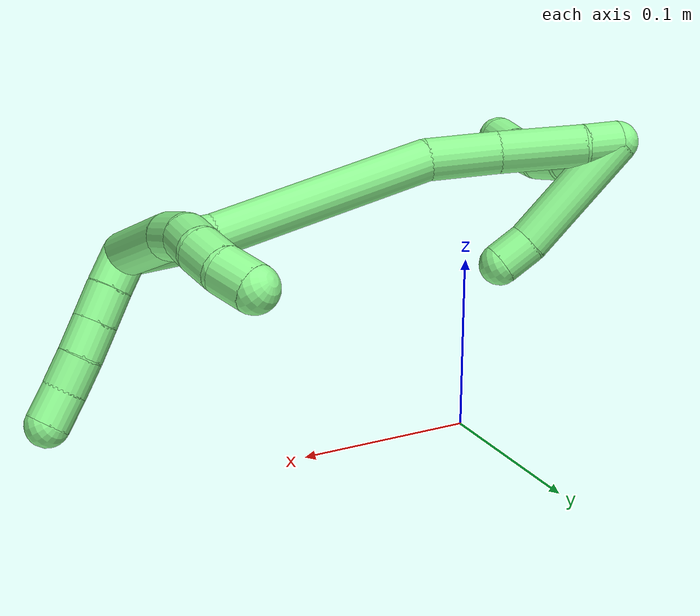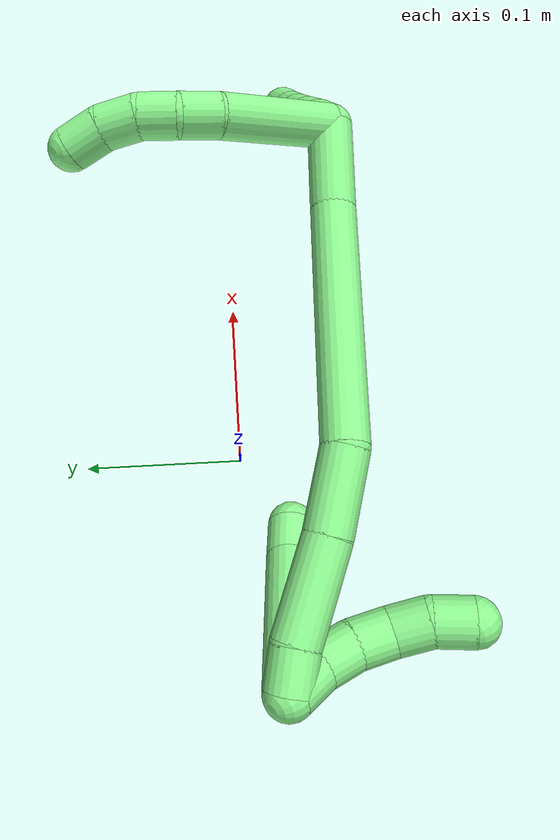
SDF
<sdf version="1.7">
 <world name="default">
  <model name="13">
   <static>0</static>
   <link name="13">
    <collision name="collision-cylinder-e_1_2_8">
     <pose>0.014918 0.001102 0.029873 -0.036865 0.462868 -0.008688</pose>
     <geometry><cylinder><radius>0.0125</radius><length>0.066818</length></cylinder></geometry>
     <surface>
      <friction><ode><mu>1.16</mu><mu2>1.16</mu2><slip1>0</slip1><slip2>0</slip2></ode></friction>
      <contact><ode><kp>1e+06</kp><kd>1</kd><max_vel>0</max_vel><min_depth>0.001</min_depth></ode></contact>
     </surface>
    </collision>
    <visual name="visual-cylinder-e_1_2_8">
     <pose>0.014918 0.001102 0.029873 -0.036865 0.462868 -0.008688</pose>
     <geometry><cylinder><radius>0.0125</radius><length>0.066818</length></cylinder></geometry>
     <material><ambient>0.564706 0.984314 0.572549 1</ambient></material>
    </visual>
    <collision name="collision-cylinder-e_2_8_9">
     <pose>0.035096 0.004328 0.069053 -0.224415 0.503693 -0.057972</pose>
     <geometry><cylinder><radius>0.0125</radius><length>0.0218</length></cylinder></geometry>
     <surface>
      <friction><ode><mu>1.16</mu><mu2>1.16</mu2><slip1>0</slip1><slip2>0</slip2></ode></friction>
      <contact><ode><kp>1e+06</kp><kd>1</kd><max_vel>0</max_vel><min_depth>0.001</min_depth></ode></contact>
     </surface>
    </collision>
    <visual name="visual-cylinder-e_2_8_9">
     <pose>0.035096 0.004328 0.069053 -0.224415 0.503693 -0.057972</pose>
     <geometry><cylinder><radius>0.0125</radius><length>0.0218</length></cylinder></geometry>
     <material><ambient>0.564706 0.984314 0.572549 1</ambient></material>
    </visual>
    <collision name="collision-cylinder-e_3_9_10">
     <pose>0.046698 0.010531 0.085408 -0.524629 0.661591 -0.183894</pose>
     <geometry><cylinder><radius>0.0125</radius><length>0.02064</length></cylinder></geometry>
     <surface>
      <friction><ode><mu>1.16</mu><mu2>1.16</mu2><slip1>0</slip1><slip2>0</slip2></ode></friction>
      <contact><ode><kp>1e+06</kp><kd>1</kd><max_vel>0</max_vel><min_depth>0.001</min_depth></ode></contact>
     </surface>
    </collision>
    <visual name="visual-cylinder-e_3_9_10">
     <pose>0.046698 0.010531 0.085408 -0.524629 0.661591 -0.183894</pose>
     <geometry><cylinder><radius>0.0125</radius><length>0.02064</length></cylinder></geometry>
     <material><ambient>0.564706 0.984314 0.572549 1</ambient></material>
    </visual>
    <collision name="collision-cylinder-e_4_10_11">
     <pose>0.057551 0.020782 0.099352 -0.730074 0.453646 -0.175948</pose>
     <geometry><cylinder><radius>0.0125</radius><length>0.020594</length></cylinder></geometry>
     <surface>
      <friction><ode><mu>1.16</mu><mu2>1.16</mu2><slip1>0</slip1><slip2>0</slip2></ode></friction>
      <contact><ode><kp>1e+06</kp><kd>1</kd><max_vel>0</max_vel><min_depth>0.001</min_depth></ode></contact>
     </surface>
    </collision>
    <visual name="visual-cylinder-e_4_10_11">
     <pose>0.057551 0.020782 0.099352 -0.730074 0.453646 -0.175948</pose>
     <geometry><cylinder><radius>0.0125</radius><length>0.020594</length></cylinder></geometry>
     <material><ambient>0.564706 0.984314 0.572549 1</ambient></material>
    </visual>
    <collision name="collision-cylinder-e_5_11_6">
     <pose>0.064013 0.03407 0.113108 -0.803678 0.194741 -0.082973</pose>
     <geometry><cylinder><radius>0.0125</radius><length>0.020148</length></cylinder></geometry>
     <surface>
      <friction><ode><mu>1.16</mu><mu2>1.16</mu2><slip1>0</slip1><slip2>0</slip2></ode></friction>
      <contact><ode><kp>1e+06</kp><kd>1</kd><max_vel>0</max_vel><min_depth>0.001</min_depth></ode></contact>
     </surface>
    </collision>
    <visual name="visual-cylinder-e_5_11_6">
     <pose>0.064013 0.03407 0.113108 -0.803678 0.194741 -0.082973</pose>
     <geometry><cylinder><radius>0.0125</radius><length>0.020148</length></cylinder></geometry>
     <material><ambient>0.564706 0.984314 0.572549 1</ambient></material>
    </visual>
    <collision name="collision-cylinder-e_1_2_12">
     <pose>0.006489 0.00566 -0.005084 -2.30263 0.706169 -1.38124</pose>
     <geometry><cylinder><radius>0.0125</radius><length>0.02</length></cylinder></geometry>
     <surface>
      <friction><ode><mu>1.16</mu><mu2>1.16</mu2><slip1>0</slip1><slip2>0</slip2></ode></friction>
      <contact><ode><kp>1e+06</kp><kd>1</kd><max_vel>0</max_vel><min_depth>0.001</min_depth></ode></contact>
     </surface>
    </collision>
    <visual name="visual-cylinder-e_1_2_12">
     <pose>0.006489 0.00566 -0.005084 -2.30263 0.706169 -1.38124</pose>
     <geometry><cylinder><radius>0.0125</radius><length>0.02</length></cylinder></geometry>
     <material><ambient>0.564706 0.984314 0.572549 1</ambient></material>
    </visual>
    <collision name="collision-cylinder-e_2_12_13">
     <pose>0.019179 0.017298 -0.01525 -2.2753 0.668869 -1.28884</pose>
     <geometry><cylinder><radius>0.0125</radius><length>0.02</length></cylinder></geometry>
     <surface>
      <friction><ode><mu>1.16</mu><mu2>1.16</mu2><slip1>0</slip1><slip2>0</slip2></ode></friction>
      <contact><ode><kp>1e+06</kp><kd>1</kd><max_vel>0</max_vel><min_depth>0.001</min_depth></ode></contact>
     </surface>
    </collision>
    <visual name="visual-cylinder-e_2_12_13">
     <pose>0.019179 0.017298 -0.01525 -2.2753 0.668869 -1.28884</pose>
     <geometry><cylinder><radius>0.0125</radius><length>0.02</length></cylinder></geometry>
     <material><ambient>0.564706 0.984314 0.572549 1</ambient></material>
    </visual>
    <collision name="collision-cylinder-e_3_13_14">
     <pose>0.031581 0.029211 -0.025462 -2.28363 0.668767 -1.29923</pose>
     <geometry><cylinder><radius>0.0125</radius><length>0.02</length></cylinder></geometry>
     <surface>
      <friction><ode><mu>1.16</mu><mu2>1.16</mu2><slip1>0</slip1><slip2>0</slip2></ode></friction>
      <contact><ode><kp>1e+06</kp><kd>1</kd><max_vel>0</max_vel><min_depth>0.001</min_depth></ode></contact>
     </surface>
    </collision>
    <visual name="visual-cylinder-e_3_13_14">
     <pose>0.031581 0.029211 -0.025462 -2.28363 0.668767 -1.29923</pose>
     <geometry><cylinder><radius>0.0125</radius><length>0.02</length></cylinder></geometry>
     <material><ambient>0.564706 0.984314 0.572549 1</ambient></material>
    </visual>
    <collision name="collision-cylinder-e_4_14_15">
     <pose>0.043613 0.040858 -0.036369 -2.36188 0.622679 -1.32882</pose>
     <geometry><cylinder><radius>0.0125</radius><length>0.02</length></cylinder></geometry>
     <surface>
      <friction><ode><mu>1.16</mu><mu2>1.16</mu2><slip1>0</slip1><slip2>0</slip2></ode></friction>
      <contact><ode><kp>1e+06</kp><kd>1</kd><max_vel>0</max_vel><min_depth>0.001</min_depth></ode></contact>
     </surface>
    </collision>
    <visual name="visual-cylinder-e_4_14_15">
     <pose>0.043613 0.040858 -0.036369 -2.36188 0.622679 -1.32882</pose>
     <geometry><cylinder><radius>0.0125</radius><length>0.02</length></cylinder></geometry>
     <material><ambient>0.564706 0.984314 0.572549 1</ambient></material>
    </visual>
    <collision name="collision-cylinder-e_5_15_5">
     <pose>0.055909 0.052045 -0.04746 -2.34118 0.702823 -1.42818</pose>
     <geometry><cylinder><radius>0.0125</radius><length>0.02</length></cylinder></geometry>
     <surface>
      <friction><ode><mu>1.16</mu><mu2>1.16</mu2><slip1>0</slip1><slip2>0</slip2></ode></friction>
      <contact><ode><kp>1e+06</kp><kd>1</kd><max_vel>0</max_vel><min_depth>0.001</min_depth></ode></contact>
     </surface>
    </collision>
    <visual name="visual-cylinder-e_5_15_5">
     <pose>0.055909 0.052045 -0.04746 -2.34118 0.702823 -1.42818</pose>
     <geometry><cylinder><radius>0.0125</radius><length>0.02</length></cylinder></geometry>
     <material><ambient>0.564706 0.984314 0.572549 1</ambient></material>
    </visual>
    <collision name="collision-cylinder-e_1_2_16">
     <pose>-0.020269 0.007939 0.013245 -0.539964 -0.919775 0.272445</pose>
     <geometry><cylinder><radius>0.0125</radius><length>0.050962</length></cylinder></geometry>
     <surface>
      <friction><ode><mu>1.16</mu><mu2>1.16</mu2><slip1>0</slip1><slip2>0</slip2></ode></friction>
      <contact><ode><kp>1e+06</kp><kd>1</kd><max_vel>0</max_vel><min_depth>0.001</min_depth></ode></contact>
     </surface>
    </collision>
    <visual name="visual-cylinder-e_1_2_16">
     <pose>-0.020269 0.007939 0.013245 -0.539964 -0.919775 0.272445</pose>
     <geometry><cylinder><radius>0.0125</radius><length>0.050962</length></cylinder></geometry>
     <material><ambient>0.564706 0.984314 0.572549 1</ambient></material>
    </visual>
    <collision name="collision-cylinder-e_2_16_17">
     <pose>-0.093087 0.028082 0.0661 -0.298883 -0.902951 0.145751</pose>
     <geometry><cylinder><radius>0.0125</radius><length>0.133855</length></cylinder></geometry>
     <surface>
      <friction><ode><mu>1.16</mu><mu2>1.16</mu2><slip1>0</slip1><slip2>0</slip2></ode></friction>
      <contact><ode><kp>1e+06</kp><kd>1</kd><max_vel>0</max_vel><min_depth>0.001</min_depth></ode></contact>
     </surface>
    </collision>
    <visual name="visual-cylinder-e_2_16_17">
     <pose>-0.093087 0.028082 0.0661 -0.298883 -0.902951 0.145751</pose>
     <geometry><cylinder><radius>0.0125</radius><length>0.133855</length></cylinder></geometry>
     <material><ambient>0.564706 0.984314 0.572549 1</ambient></material>
    </visual>
    <collision name="collision-cylinder-e_3_17_18">
     <pose>-0.159318 0.048999 0.119948 -0.549153 -0.686617 0.200712</pose>
     <geometry><cylinder><radius>0.0125</radius><length>0.043166</length></cylinder></geometry>
     <surface>
      <friction><ode><mu>1.16</mu><mu2>1.16</mu2><slip1>0</slip1><slip2>0</slip2></ode></friction>
      <contact><ode><kp>1e+06</kp><kd>1</kd><max_vel>0</max_vel><min_depth>0.001</min_depth></ode></contact>
     </surface>
    </collision>
    <visual name="visual-cylinder-e_3_17_18">
     <pose>-0.159318 0.048999 0.119948 -0.549153 -0.686617 0.200712</pose>
     <geometry><cylinder><radius>0.0125</radius><length>0.043166</length></cylinder></geometry>
     <material><ambient>0.564706 0.984314 0.572549 1</ambient></material>
    </visual>
    <collision name="collision-cylinder-e_4_18_19">
     <pose>-0.187226 0.06857 0.152391 -0.53781 -0.591052 0.167403</pose>
     <geometry><cylinder><radius>0.0125</radius><length>0.051057</length></cylinder></geometry>
     <surface>
      <friction><ode><mu>1.16</mu><mu2>1.16</mu2><slip1>0</slip1><slip2>0</slip2></ode></friction>
      <contact><ode><kp>1e+06</kp><kd>1</kd><max_vel>0</max_vel><min_depth>0.001</min_depth></ode></contact>
     </surface>
    </collision>
    <visual name="visual-cylinder-e_4_18_19">
     <pose>-0.187226 0.06857 0.152391 -0.53781 -0.591052 0.167403</pose>
     <geometry><cylinder><radius>0.0125</radius><length>0.051057</length></cylinder></geometry>
     <material><ambient>0.564706 0.984314 0.572549 1</ambient></material>
    </visual>
    <collision name="collision-cylinder-e_5_19_1">
     <pose>-0.208624 0.083607 0.176993 -0.578556 -0.753923 0.234576</pose>
     <geometry><cylinder><radius>0.0125</radius><length>0.020959</length></cylinder></geometry>
     <surface>
      <friction><ode><mu>1.16</mu><mu2>1.16</mu2><slip1>0</slip1><slip2>0</slip2></ode></friction>
      <contact><ode><kp>1e+06</kp><kd>1</kd><max_vel>0</max_vel><min_depth>0.001</min_depth></ode></contact>
     </surface>
    </collision>
    <visual name="visual-cylinder-e_5_19_1">
     <pose>-0.208624 0.083607 0.176993 -0.578556 -0.753923 0.234576</pose>
     <geometry><cylinder><radius>0.0125</radius><length>0.020959</length></cylinder></geometry>
     <material><ambient>0.564706 0.984314 0.572549 1</ambient></material>
    </visual>
    <collision name="collision-cylinder-e_1_1_20">
     <pose>-0.215745 0.087768 0.17339 3.13995 0.005254 2.53672</pose>
     <geometry><cylinder><radius>0.0125</radius><length>0.02</length></cylinder></geometry>
     <surface>
      <friction><ode><mu>1.16</mu><mu2>1.16</mu2><slip1>0</slip1><slip2>0</slip2></ode></friction>
      <contact><ode><kp>1e+06</kp><kd>1</kd><max_vel>0</max_vel><min_depth>0.001</min_depth></ode></contact>
     </surface>
    </collision>
    <visual name="visual-cylinder-e_1_1_20">
     <pose>-0.215745 0.087768 0.17339 3.13995 0.005254 2.53672</pose>
     <geometry><cylinder><radius>0.0125</radius><length>0.02</length></cylinder></geometry>
     <material><ambient>0.564706 0.984314 0.572549 1</ambient></material>
    </visual>
    <collision name="collision-cylinder-e_2_20_21">
     <pose>-0.217442 0.085528 0.153798 2.91385 -0.175805 -1.31308</pose>
     <geometry><cylinder><radius>0.0125</radius><length>0.02</length></cylinder></geometry>
     <surface>
      <friction><ode><mu>1.16</mu><mu2>1.16</mu2><slip1>0</slip1><slip2>0</slip2></ode></friction>
      <contact><ode><kp>1e+06</kp><kd>1</kd><max_vel>0</max_vel><min_depth>0.001</min_depth></ode></contact>
     </surface>
    </collision>
    <visual name="visual-cylinder-e_2_20_21">
     <pose>-0.217442 0.085528 0.153798 2.91385 -0.175805 -1.31308</pose>
     <geometry><cylinder><radius>0.0125</radius><length>0.02</length></cylinder></geometry>
     <material><ambient>0.564706 0.984314 0.572549 1</ambient></material>
    </visual>
    <collision name="collision-cylinder-e_3_21_22">
     <pose>-0.222698 0.080171 0.135382 2.80031 -0.358342 -1.62056</pose>
     <geometry><cylinder><radius>0.0125</radius><length>0.02</length></cylinder></geometry>
     <surface>
      <friction><ode><mu>1.16</mu><mu2>1.16</mu2><slip1>0</slip1><slip2>0</slip2></ode></friction>
      <contact><ode><kp>1e+06</kp><kd>1</kd><max_vel>0</max_vel><min_depth>0.001</min_depth></ode></contact>
     </surface>
    </collision>
    <visual name="visual-cylinder-e_3_21_22">
     <pose>-0.222698 0.080171 0.135382 2.80031 -0.358342 -1.62056</pose>
     <geometry><cylinder><radius>0.0125</radius><length>0.02</length></cylinder></geometry>
     <material><ambient>0.564706 0.984314 0.572549 1</ambient></material>
    </visual>
    <collision name="collision-cylinder-e_4_22_23">
     <pose>-0.230025 0.071063 0.119505 2.4388 -0.391928 -0.992547</pose>
     <geometry><cylinder><radius>0.0125</radius><length>0.02</length></cylinder></geometry>
     <surface>
      <friction><ode><mu>1.16</mu><mu2>1.16</mu2><slip1>0</slip1><slip2>0</slip2></ode></friction>
      <contact><ode><kp>1e+06</kp><kd>1</kd><max_vel>0</max_vel><min_depth>0.001</min_depth></ode></contact>
     </surface>
    </collision>
    <visual name="visual-cylinder-e_4_22_23">
     <pose>-0.230025 0.071063 0.119505 2.4388 -0.391928 -0.992547</pose>
     <geometry><cylinder><radius>0.0125</radius><length>0.02</length></cylinder></geometry>
     <material><ambient>0.564706 0.984314 0.572549 1</ambient></material>
    </visual>
    <collision name="collision-cylinder-e_5_23_4">
     <pose>-0.240093 0.06053 0.106116 2.51787 -0.67489 -1.65536</pose>
     <geometry><cylinder><radius>0.0125</radius><length>0.02</length></cylinder></geometry>
     <surface>
      <friction><ode><mu>1.16</mu><mu2>1.16</mu2><slip1>0</slip1><slip2>0</slip2></ode></friction>
      <contact><ode><kp>1e+06</kp><kd>1</kd><max_vel>0</max_vel><min_depth>0.001</min_depth></ode></contact>
     </surface>
    </collision>
    <visual name="visual-cylinder-e_5_23_4">
     <pose>-0.240093 0.06053 0.106116 2.51787 -0.67489 -1.65536</pose>
     <geometry><cylinder><radius>0.0125</radius><length>0.02</length></cylinder></geometry>
     <material><ambient>0.564706 0.984314 0.572549 1</ambient></material>
    </visual>
    <collision name="collision-cylinder-e_1_1_24">
     <pose>-0.192696 0.100335 0.153803 -2.74038 0.623244 -2.0154</pose>
     <geometry><cylinder><radius>0.0125</radius><length>0.07916</length></cylinder></geometry>
     <surface>
      <friction><ode><mu>1.16</mu><mu2>1.16</mu2><slip1>0</slip1><slip2>0</slip2></ode></friction>
      <contact><ode><kp>1e+06</kp><kd>1</kd><max_vel>0</max_vel><min_depth>0.001</min_depth></ode></contact>
     </surface>
    </collision>
    <visual name="visual-cylinder-e_1_1_24">
     <pose>-0.192696 0.100335 0.153803 -2.74038 0.623244 -2.0154</pose>
     <geometry><cylinder><radius>0.0125</radius><length>0.07916</length></cylinder></geometry>
     <material><ambient>0.564706 0.984314 0.572549 1</ambient></material>
    </visual>
    <collision name="collision-cylinder-e_2_24_3">
     <pose>-0.162771 0.114244 0.116459 -2.96837 0.713891 -2.68409</pose>
     <geometry><cylinder><radius>0.0125</radius><length>0.02084</length></cylinder></geometry>
     <surface>
      <friction><ode><mu>1.16</mu><mu2>1.16</mu2><slip1>0</slip1><slip2>0</slip2></ode></friction>
      <contact><ode><kp>1e+06</kp><kd>1</kd><max_vel>0</max_vel><min_depth>0.001</min_depth></ode></contact>
     </surface>
    </collision>
    <visual name="visual-cylinder-e_2_24_3">
     <pose>-0.162771 0.114244 0.116459 -2.96837 0.713891 -2.68409</pose>
     <geometry><cylinder><radius>0.0125</radius><length>0.02084</length></cylinder></geometry>
     <material><ambient>0.564706 0.984314 0.572549 1</ambient></material>
    </visual>
    <collision name="collision-sphere-3">
     <pose>-0.155949 0.115602 0.108701 0 -0 0</pose>
     <geometry><sphere><radius>0.0125</radius></sphere></geometry>
     <surface>
      <friction><ode><mu>1.16</mu><mu2>1.16</mu2><slip1>0</slip1><slip2>0</slip2></ode></friction>
      <contact><ode><kp>1e+06</kp><kd>1</kd><max_vel>0</max_vel><min_depth>0.001</min_depth></ode></contact>
     </surface>
    </collision>
    <visual name="visual-sphere-3">
     <pose>-0.155949 0.115602 0.108701 0 -0 0</pose>
     <geometry><sphere><radius>0.0125</radius></sphere></geometry>
     <material><ambient>0.564706 0.984314 0.572549 1</ambient></material>
    </visual>
    <collision name="collision-sphere-24">
     <pose>-0.169594 0.112887 0.124217 0 -0 0</pose>
     <geometry><sphere><radius>0.0125</radius></sphere></geometry>
     <surface>
      <friction><ode><mu>1.16</mu><mu2>1.16</mu2><slip1>0</slip1><slip2>0</slip2></ode></friction>
      <contact><ode><kp>1e+06</kp><kd>1</kd><max_vel>0</max_vel><min_depth>0.001</min_depth></ode></contact>
     </surface>
    </collision>
    <visual name="visual-sphere-24">
     <pose>-0.169594 0.112887 0.124217 0 -0 0</pose>
     <geometry><sphere><radius>0.0125</radius></sphere></geometry>
     <material><ambient>0.564706 0.984314 0.572549 1</ambient></material>
    </visual>
    <collision name="collision-sphere-4">
     <pose>-0.246341 0.055969 0.099778 0 -0 0</pose>
     <geometry><sphere><radius>0.0125</radius></sphere></geometry>
     <surface>
      <friction><ode><mu>1.16</mu><mu2>1.16</mu2><slip1>0</slip1><slip2>0</slip2></ode></friction>
      <contact><ode><kp>1e+06</kp><kd>1</kd><max_vel>0</max_vel><min_depth>0.001</min_depth></ode></contact>
     </surface>
    </collision>
    <visual name="visual-sphere-4">
     <pose>-0.246341 0.055969 0.099778 0 -0 0</pose>
     <geometry><sphere><radius>0.0125</radius></sphere></geometry>
     <material><ambient>0.564706 0.984314 0.572549 1</ambient></material>
    </visual>
    <collision name="collision-sphere-23">
     <pose>-0.233845 0.06509 0.112454 0 -0 0</pose>
     <geometry><sphere><radius>0.0125</radius></sphere></geometry>
     <surface>
      <friction><ode><mu>1.16</mu><mu2>1.16</mu2><slip1>0</slip1><slip2>0</slip2></ode></friction>
      <contact><ode><kp>1e+06</kp><kd>1</kd><max_vel>0</max_vel><min_depth>0.001</min_depth></ode></contact>
     </surface>
    </collision>
    <visual name="visual-sphere-23">
     <pose>-0.233845 0.06509 0.112454 0 -0 0</pose>
     <geometry><sphere><radius>0.0125</radius></sphere></geometry>
     <material><ambient>0.564706 0.984314 0.572549 1</ambient></material>
    </visual>
    <collision name="collision-sphere-22">
     <pose>-0.226205 0.077037 0.126557 0 -0 0</pose>
     <geometry><sphere><radius>0.0125</radius></sphere></geometry>
     <surface>
      <friction><ode><mu>1.16</mu><mu2>1.16</mu2><slip1>0</slip1><slip2>0</slip2></ode></friction>
      <contact><ode><kp>1e+06</kp><kd>1</kd><max_vel>0</max_vel><min_depth>0.001</min_depth></ode></contact>
     </surface>
    </collision>
    <visual name="visual-sphere-22">
     <pose>-0.226205 0.077037 0.126557 0 -0 0</pose>
     <geometry><sphere><radius>0.0125</radius></sphere></geometry>
     <material><ambient>0.564706 0.984314 0.572549 1</ambient></material>
    </visual>
    <collision name="collision-sphere-21">
     <pose>-0.219191 0.083305 0.144206 0 -0 0</pose>
     <geometry><sphere><radius>0.0125</radius></sphere></geometry>
     <surface>
      <friction><ode><mu>1.16</mu><mu2>1.16</mu2><slip1>0</slip1><slip2>0</slip2></ode></friction>
      <contact><ode><kp>1e+06</kp><kd>1</kd><max_vel>0</max_vel><min_depth>0.001</min_depth></ode></contact>
     </surface>
    </collision>
    <visual name="visual-sphere-21">
     <pose>-0.219191 0.083305 0.144206 0 -0 0</pose>
     <geometry><sphere><radius>0.0125</radius></sphere></geometry>
     <material><ambient>0.564706 0.984314 0.572549 1</ambient></material>
    </visual>
    <collision name="collision-sphere-20">
     <pose>-0.215693 0.087751 0.16339 0 -0 0</pose>
     <geometry><sphere><radius>0.0125</radius></sphere></geometry>
     <surface>
      <friction><ode><mu>1.16</mu><mu2>1.16</mu2><slip1>0</slip1><slip2>0</slip2></ode></friction>
      <contact><ode><kp>1e+06</kp><kd>1</kd><max_vel>0</max_vel><min_depth>0.001</min_depth></ode></contact>
     </surface>
    </collision>
    <visual name="visual-sphere-20">
     <pose>-0.215693 0.087751 0.16339 0 -0 0</pose>
     <geometry><sphere><radius>0.0125</radius></sphere></geometry>
     <material><ambient>0.564706 0.984314 0.572549 1</ambient></material>
    </visual>
    <collision name="collision-sphere-6">
     <pose>0.065962 0.041186 0.119968 0 -0 0</pose>
     <geometry><sphere><radius>0.0125</radius></sphere></geometry>
     <surface>
      <friction><ode><mu>1.16</mu><mu2>1.16</mu2><slip1>0</slip1><slip2>0</slip2></ode></friction>
      <contact><ode><kp>1e+06</kp><kd>1</kd><max_vel>0</max_vel><min_depth>0.001</min_depth></ode></contact>
     </surface>
    </collision>
    <visual name="visual-sphere-6">
     <pose>0.065962 0.041186 0.119968 0 -0 0</pose>
     <geometry><sphere><radius>0.0125</radius></sphere></geometry>
     <material><ambient>0.564706 0.984314 0.572549 1</ambient></material>
    </visual>
    <collision name="collision-sphere-11">
     <pose>0.062063 0.026955 0.106248 0 -0 0</pose>
     <geometry><sphere><radius>0.0125</radius></sphere></geometry>
     <surface>
      <friction><ode><mu>1.16</mu><mu2>1.16</mu2><slip1>0</slip1><slip2>0</slip2></ode></friction>
      <contact><ode><kp>1e+06</kp><kd>1</kd><max_vel>0</max_vel><min_depth>0.001</min_depth></ode></contact>
     </surface>
    </collision>
    <visual name="visual-sphere-11">
     <pose>0.062063 0.026955 0.106248 0 -0 0</pose>
     <geometry><sphere><radius>0.0125</radius></sphere></geometry>
     <material><ambient>0.564706 0.984314 0.572549 1</ambient></material>
    </visual>
    <collision name="collision-sphere-10">
     <pose>0.053038 0.01461 0.092455 0 -0 0</pose>
     <geometry><sphere><radius>0.0125</radius></sphere></geometry>
     <surface>
      <friction><ode><mu>1.16</mu><mu2>1.16</mu2><slip1>0</slip1><slip2>0</slip2></ode></friction>
      <contact><ode><kp>1e+06</kp><kd>1</kd><max_vel>0</max_vel><min_depth>0.001</min_depth></ode></contact>
     </surface>
    </collision>
    <visual name="visual-sphere-10">
     <pose>0.053038 0.01461 0.092455 0 -0 0</pose>
     <geometry><sphere><radius>0.0125</radius></sphere></geometry>
     <material><ambient>0.564706 0.984314 0.572549 1</ambient></material>
    </visual>
    <collision name="collision-sphere-9">
     <pose>0.040357 0.006452 0.07836 0 -0 0</pose>
     <geometry><sphere><radius>0.0125</radius></sphere></geometry>
     <surface>
      <friction><ode><mu>1.16</mu><mu2>1.16</mu2><slip1>0</slip1><slip2>0</slip2></ode></friction>
      <contact><ode><kp>1e+06</kp><kd>1</kd><max_vel>0</max_vel><min_depth>0.001</min_depth></ode></contact>
     </surface>
    </collision>
    <visual name="visual-sphere-9">
     <pose>0.040357 0.006452 0.07836 0 -0 0</pose>
     <geometry><sphere><radius>0.0125</radius></sphere></geometry>
     <material><ambient>0.564706 0.984314 0.572549 1</ambient></material>
    </visual>
    <collision name="collision-sphere-2">
     <geometry><sphere><radius>0.0125</radius></sphere></geometry>
     <surface>
      <friction><ode><mu>1.16</mu><mu2>1.16</mu2><slip1>0</slip1><slip2>0</slip2></ode></friction>
      <contact><ode><kp>1e+06</kp><kd>1</kd><max_vel>0</max_vel><min_depth>0.001</min_depth></ode></contact>
     </surface>
    </collision>
    <visual name="visual-sphere-2">
     <geometry><sphere><radius>0.0125</radius></sphere></geometry>
     <material><ambient>0.564706 0.984314 0.572549 1</ambient></material>
    </visual>
    <collision name="collision-sphere-19">
     <pose>-0.201451 0.079429 0.170597 0 -0 0</pose>
     <geometry><sphere><radius>0.0125</radius></sphere></geometry>
     <surface>
      <friction><ode><mu>1.16</mu><mu2>1.16</mu2><slip1>0</slip1><slip2>0</slip2></ode></friction>
      <contact><ode><kp>1e+06</kp><kd>1</kd><max_vel>0</max_vel><min_depth>0.001</min_depth></ode></contact>
     </surface>
    </collision>
    <visual name="visual-sphere-19">
     <pose>-0.201451 0.079429 0.170597 0 -0 0</pose>
     <geometry><sphere><radius>0.0125</radius></sphere></geometry>
     <material><ambient>0.564706 0.984314 0.572549 1</ambient></material>
    </visual>
    <collision name="collision-sphere-8">
     <pose>0.029835 0.002204 0.059746 0 -0 0</pose>
     <geometry><sphere><radius>0.0125</radius></sphere></geometry>
     <surface>
      <friction><ode><mu>1.16</mu><mu2>1.16</mu2><slip1>0</slip1><slip2>0</slip2></ode></friction>
      <contact><ode><kp>1e+06</kp><kd>1</kd><max_vel>0</max_vel><min_depth>0.001</min_depth></ode></contact>
     </surface>
    </collision>
    <visual name="visual-sphere-8">
     <pose>0.029835 0.002204 0.059746 0 -0 0</pose>
     <geometry><sphere><radius>0.0125</radius></sphere></geometry>
     <material><ambient>0.564706 0.984314 0.572549 1</ambient></material>
    </visual>
    <collision name="collision-sphere-12">
     <pose>0.012978 0.011321 -0.010169 0 -0 0</pose>
     <geometry><sphere><radius>0.0125</radius></sphere></geometry>
     <surface>
      <friction><ode><mu>1.16</mu><mu2>1.16</mu2><slip1>0</slip1><slip2>0</slip2></ode></friction>
      <contact><ode><kp>1e+06</kp><kd>1</kd><max_vel>0</max_vel><min_depth>0.001</min_depth></ode></contact>
     </surface>
    </collision>
    <visual name="visual-sphere-12">
     <pose>0.012978 0.011321 -0.010169 0 -0 0</pose>
     <geometry><sphere><radius>0.0125</radius></sphere></geometry>
     <material><ambient>0.564706 0.984314 0.572549 1</ambient></material>
    </visual>
    <collision name="collision-sphere-13">
     <pose>0.02538 0.023276 -0.020331 0 -0 0</pose>
     <geometry><sphere><radius>0.0125</radius></sphere></geometry>
     <surface>
      <friction><ode><mu>1.16</mu><mu2>1.16</mu2><slip1>0</slip1><slip2>0</slip2></ode></friction>
      <contact><ode><kp>1e+06</kp><kd>1</kd><max_vel>0</max_vel><min_depth>0.001</min_depth></ode></contact>
     </surface>
    </collision>
    <visual name="visual-sphere-13">
     <pose>0.02538 0.023276 -0.020331 0 -0 0</pose>
     <geometry><sphere><radius>0.0125</radius></sphere></geometry>
     <material><ambient>0.564706 0.984314 0.572549 1</ambient></material>
    </visual>
    <collision name="collision-sphere-14">
     <pose>0.037781 0.035147 -0.030593 0 -0 0</pose>
     <geometry><sphere><radius>0.0125</radius></sphere></geometry>
     <surface>
      <friction><ode><mu>1.16</mu><mu2>1.16</mu2><slip1>0</slip1><slip2>0</slip2></ode></friction>
      <contact><ode><kp>1e+06</kp><kd>1</kd><max_vel>0</max_vel><min_depth>0.001</min_depth></ode></contact>
     </surface>
    </collision>
    <visual name="visual-sphere-14">
     <pose>0.037781 0.035147 -0.030593 0 -0 0</pose>
     <geometry><sphere><radius>0.0125</radius></sphere></geometry>
     <material><ambient>0.564706 0.984314 0.572549 1</ambient></material>
    </visual>
    <collision name="collision-sphere-15">
     <pose>0.049445 0.046569 -0.042146 0 -0 0</pose>
     <geometry><sphere><radius>0.0125</radius></sphere></geometry>
     <surface>
      <friction><ode><mu>1.16</mu><mu2>1.16</mu2><slip1>0</slip1><slip2>0</slip2></ode></friction>
      <contact><ode><kp>1e+06</kp><kd>1</kd><max_vel>0</max_vel><min_depth>0.001</min_depth></ode></contact>
     </surface>
    </collision>
    <visual name="visual-sphere-15">
     <pose>0.049445 0.046569 -0.042146 0 -0 0</pose>
     <geometry><sphere><radius>0.0125</radius></sphere></geometry>
     <material><ambient>0.564706 0.984314 0.572549 1</ambient></material>
    </visual>
    <collision name="collision-sphere-5">
     <pose>0.062373 0.057521 -0.052773 0 -0 0</pose>
     <geometry><sphere><radius>0.0125</radius></sphere></geometry>
     <surface>
      <friction><ode><mu>1.16</mu><mu2>1.16</mu2><slip1>0</slip1><slip2>0</slip2></ode></friction>
      <contact><ode><kp>1e+06</kp><kd>1</kd><max_vel>0</max_vel><min_depth>0.001</min_depth></ode></contact>
     </surface>
    </collision>
    <visual name="visual-sphere-5">
     <pose>0.062373 0.057521 -0.052773 0 -0 0</pose>
     <geometry><sphere><radius>0.0125</radius></sphere></geometry>
     <material><ambient>0.564706 0.984314 0.572549 1</ambient></material>
    </visual>
    <collision name="collision-sphere-16">
     <pose>-0.040539 0.015877 0.026489 0 -0 0</pose>
     <geometry><sphere><radius>0.0125</radius></sphere></geometry>
     <surface>
      <friction><ode><mu>1.16</mu><mu2>1.16</mu2><slip1>0</slip1><slip2>0</slip2></ode></friction>
      <contact><ode><kp>1e+06</kp><kd>1</kd><max_vel>0</max_vel><min_depth>0.001</min_depth></ode></contact>
     </surface>
    </collision>
    <visual name="visual-sphere-16">
     <pose>-0.040539 0.015877 0.026489 0 -0 0</pose>
     <geometry><sphere><radius>0.0125</radius></sphere></geometry>
     <material><ambient>0.564706 0.984314 0.572549 1</ambient></material>
    </visual>
    <collision name="collision-sphere-17">
     <pose>-0.145636 0.040286 0.10571 0 -0 0</pose>
     <geometry><sphere><radius>0.0125</radius></sphere></geometry>
     <surface>
      <friction><ode><mu>1.16</mu><mu2>1.16</mu2><slip1>0</slip1><slip2>0</slip2></ode></friction>
      <contact><ode><kp>1e+06</kp><kd>1</kd><max_vel>0</max_vel><min_depth>0.001</min_depth></ode></contact>
     </surface>
    </collision>
    <visual name="visual-sphere-17">
     <pose>-0.145636 0.040286 0.10571 0 -0 0</pose>
     <geometry><sphere><radius>0.0125</radius></sphere></geometry>
     <material><ambient>0.564706 0.984314 0.572549 1</ambient></material>
    </visual>
    <collision name="collision-sphere-18">
     <pose>-0.173 0.057712 0.134186 0 -0 0</pose>
     <geometry><sphere><radius>0.0125</radius></sphere></geometry>
     <surface>
      <friction><ode><mu>1.16</mu><mu2>1.16</mu2><slip1>0</slip1><slip2>0</slip2></ode></friction>
      <contact><ode><kp>1e+06</kp><kd>1</kd><max_vel>0</max_vel><min_depth>0.001</min_depth></ode></contact>
     </surface>
    </collision>
    <visual name="visual-sphere-18">
     <pose>-0.173 0.057712 0.134186 0 -0 0</pose>
     <geometry><sphere><radius>0.0125</radius></sphere></geometry>
     <material><ambient>0.564706 0.984314 0.572549 1</ambient></material>
    </visual>
    <collision name="collision-sphere-1">
     <pose>-0.215798 0.087784 0.183389 0 -0 0</pose>
     <geometry><sphere><radius>0.0125</radius></sphere></geometry>
     <surface>
      <friction><ode><mu>1.16</mu><mu2>1.16</mu2><slip1>0</slip1><slip2>0</slip2></ode></friction>
      <contact><ode><kp>1e+06</kp><kd>1</kd><max_vel>0</max_vel><min_depth>0.001</min_depth></ode></contact>
     </surface>
    </collision>
    <visual name="visual-sphere-1">
     <pose>-0.215798 0.087784 0.183389 0 -0 0</pose>
     <geometry><sphere><radius>0.0125</radius></sphere></geometry>
     <material><ambient>0.564706 0.984314 0.572549 1</ambient></material>
    </visual>
    <inertial>
     <pose>-0.08951 0.045277 0.082071 0 -0 0</pose>
     <mass>0.75</mass>
     <inertia>
      <ixx>0.000142</ixx>
      <ixy>0</ixy>
      <ixz>0</ixz>
      <iyy>0.000293</iyy>
      <iyz>0</iyz>
      <izz>7.7e-05</izz>
     </inertia>
    </inertial>
   </link>
   <pose>0.178266 -0.059879 0.112205 -1.02329 0.088745 0.610513</pose>
  </model>
 </world>
</sdf>
